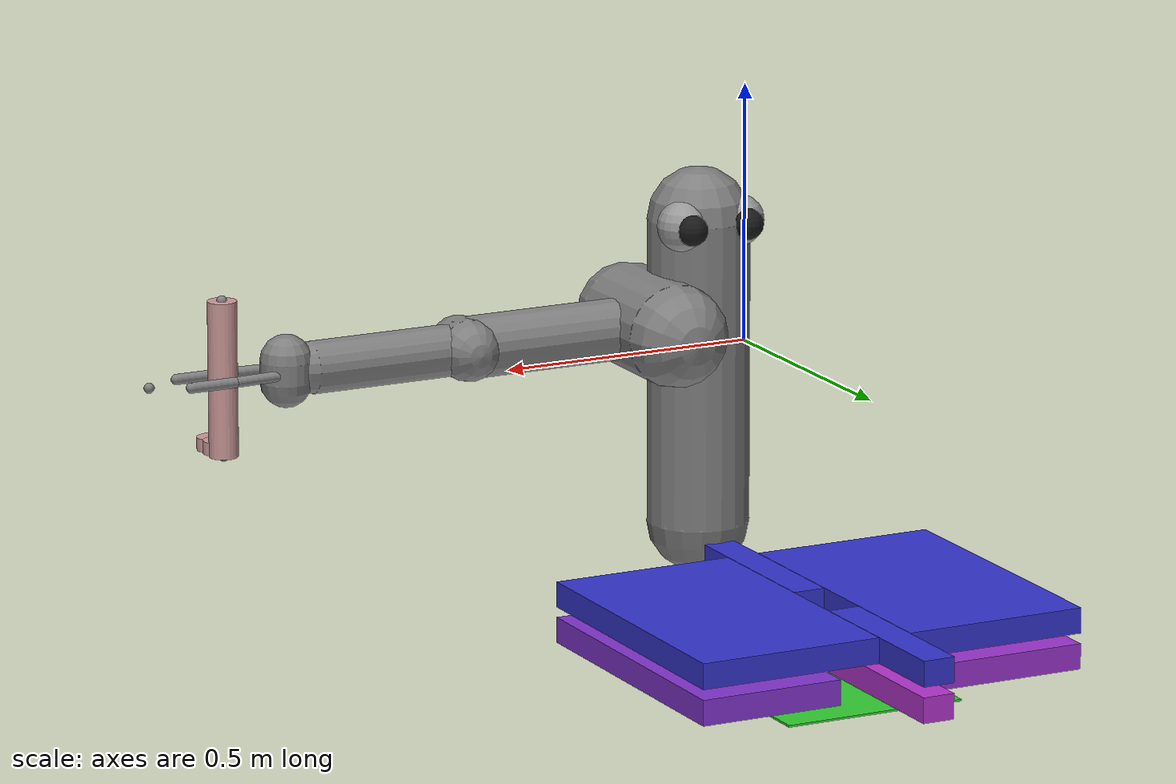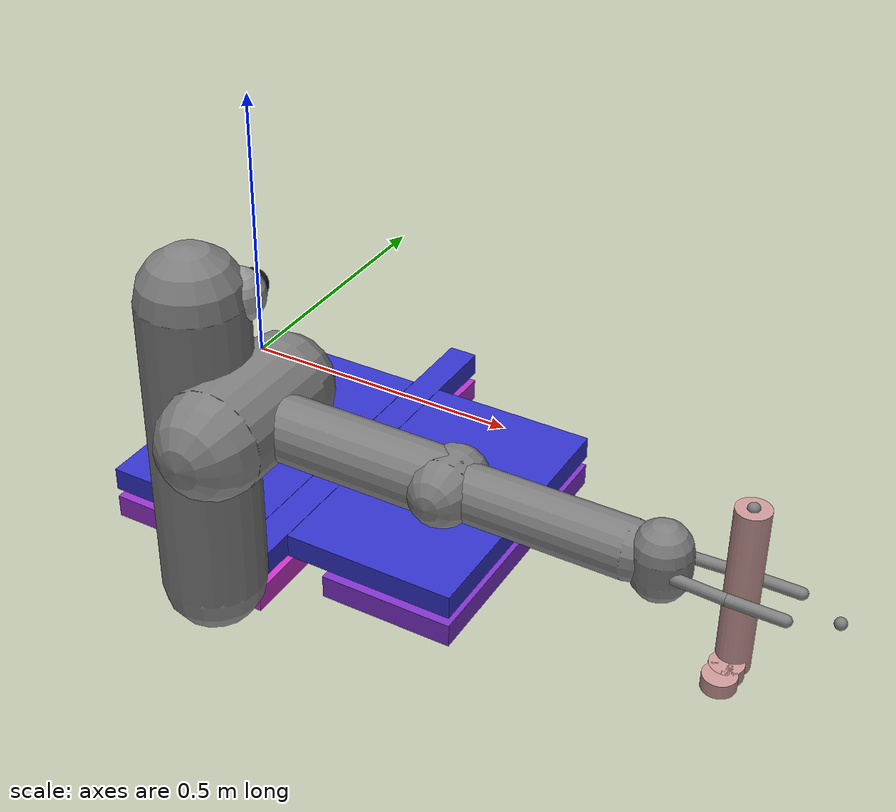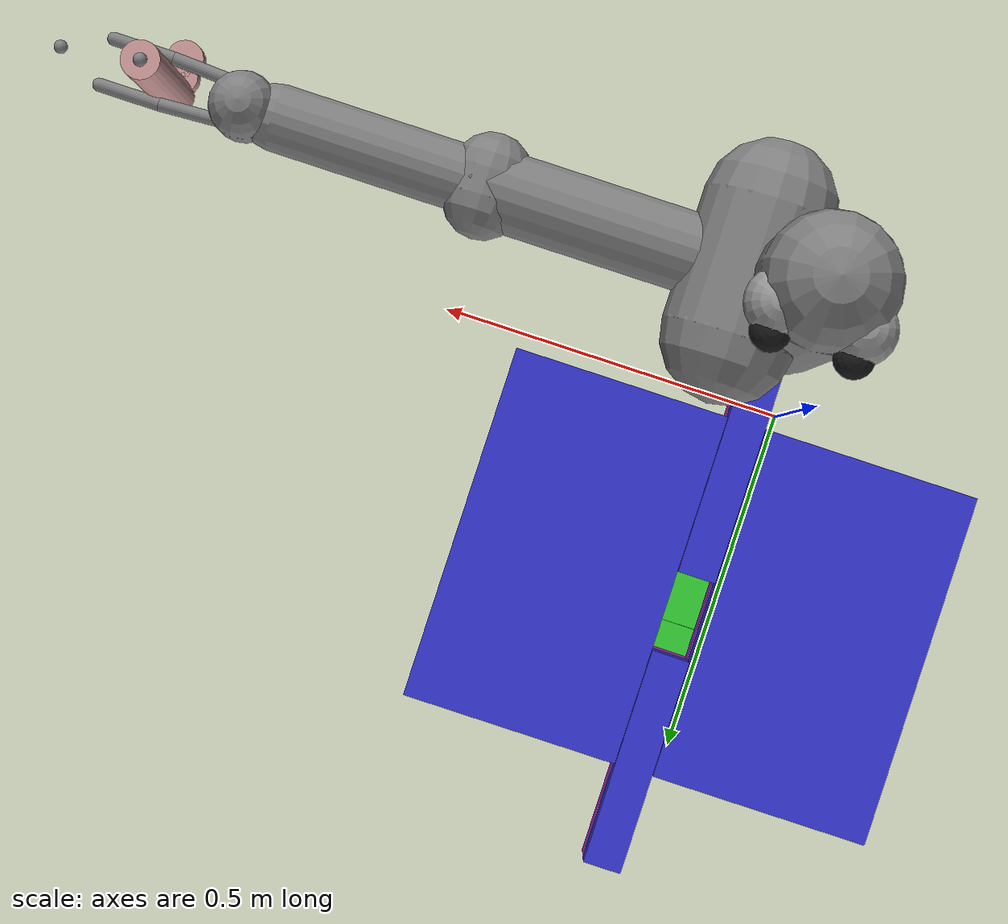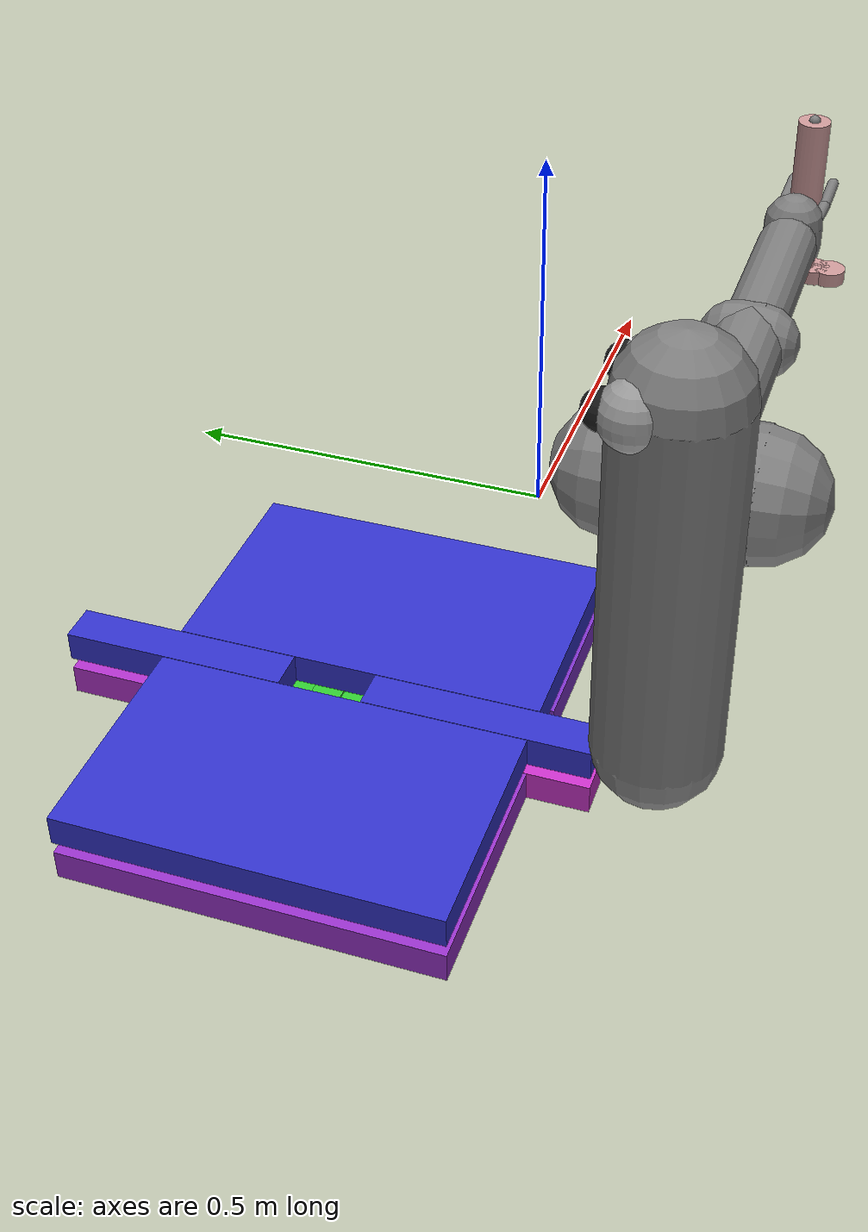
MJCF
<mujoco model="arm3d">

    <compiler inertiafromgeom="true" angle="radian" coordinate="local" />
    <option timestep="0.01" gravity="0 0 0" iterations="20" integrator="Euler" />
    <default>
        <joint armature="0.04" damping="1" limited="true" />
        <geom friction=".5 .1 .1" margin="0.002" condim="1" contype="0" conaffinity="0" />
    </default>

    <worldbody>
        <body name="r_shoulder_pan_link" pos="0 -0.188 0">
            <geom name="e1" type="sphere" rgba="0.6 0.6 0.6 1" pos="-0.06 0.05 0.2" size="0.05" />
            <geom name="e2" type="sphere" rgba="0.6 0.6 0.6 1" pos=" 0.06 0.05 0.2" size="0.05" />
            <geom name="e1p" type="sphere" rgba="0.1 0.1 0.1 1" pos="-0.06 0.09 0.2" size="0.03" />
            <geom name="e2p" type="sphere" rgba="0.1 0.1 0.1 1" pos=" 0.06 0.09 0.2" size="0.03" />
            <geom name="sp" type="capsule" fromto="0 0 -0.4 0 0 0.2" size="0.1" />
            <joint name="r_shoulder_pan_joint" type="hinge" pos="0 0 0" axis="0 0 1" range="-2.2854 1.714602" damping="10.0" />

            <body name="r_shoulder_lift_link" pos="0.1 0 0">
                <geom name="sl" type="capsule" fromto="0 -0.1 0 0 0.1 0" size="0.1" />
                <joint name="r_shoulder_lift_joint" type="hinge" pos="0 0 0" axis="0 1 0" range="-0.5236 1.3963" damping="10.0" />

                <body name="r_upper_arm_roll_link" pos="0 0 0">
                    <geom name="uar" type="capsule" fromto="-0.1 0 0 0.1 0 0" size="0.02" />
                    <joint name="r_upper_arm_roll_joint" type="hinge" pos="0 0 0" axis="1 0 0" range="-3.9 0.8" damping="0.1" />

                    <body name="r_upper_arm_link" pos="0 0 0">
                        <geom name="ua" type="capsule" fromto="0 0 0 0.4 0 0" size="0.06" />

                        <body name="r_elbow_flex_link" pos="0.4 0 0">
                            <geom name="ef" type="capsule" fromto="0 -0.02 0 0.0 0.02 0" size="0.06" />
                            <joint name="r_elbow_flex_joint" type="hinge" pos="0 0 0" axis="0 1 0" range="-2.3213 0" damping="1.0" />

                            <body name="r_forearm_roll_link" pos="0 0 0">
                                <geom name="fr" type="capsule" fromto="-0.1 0 0 0.1 0 0" size="0.02" />
                                <joint name="r_forearm_roll_joint" type="hinge" pos="0 0 0" axis="1 0 0" range="-30.15 30.15" damping=".1" />

                                <body name="r_forearm_link" pos="0 0 0">
                                    <geom name="fa" type="capsule" fromto="0 0 0 0.321 0 0" size="0.05" />

                                    <body name="r_wrist_flex_link" pos="0.321 0 0">
                                        <geom name="wf" type="capsule" fromto="0 -0.02 0 0 0.02 0" size="0.01" />
                                        <joint name="r_wrist_flex_joint" type="hinge" pos="0 0 0" axis="0 1 0" range="-2.094 0" damping=".1" />

                                        <body name="r_wrist_roll_link" pos="0 0 0">
                                            <geom name="wr" type="capsule" fromto="-0.02 0 0 0.02 0 0" size="0.01" />
                                            <joint name="r_wrist_roll_joint" type="hinge" pos="0 0 0" axis="1 0 0" range="-30.15 30.15" damping="0.1" />

                                            <body name="r_gripper_palm_link" pos="0 0 0">
                                                <geom name="pl" type="capsule" fromto="0.05 0 -0.02 0.05 0 0.02" size="0.05" />

                                                <body name="r_gripper_tool_frame" pos="0.18 0 0">
                                                    <site name="leg_bottom" pos="0 0 -0.15" size="0.01" />
                                                    <site name="leg_top" pos="0 0 0.15" size="0.01" />
                                                    <site name="leg_right" pos="0.15 0 0" size="0.01" />
                                                    <body name="key" pos="0 0 -0.0">
                                                        <geom name="key_geom" rgba="0.8 0.6 0.6 1" type="cylinder" fromto="0 0 -0.15 0 0 0.15" size="0.028" density="2000" contype="1" conaffinity="1" />
                                                    </body>
                                                    <body name="key_head1" pos="0 -0.028 -0.125">
                                                        <geom name="key_head_geom1" rgba="0.8 0.6 0.6 1" type="cylinder" fromto="0 0 0 0 0 -0.025" size="0.028" density="2000" contype="1" conaffinity="1" />
                                                    </body>
                                                    <body name="key_head2" pos="0 -0.056 -0.125">
                                                        <geom name="key_head_geom2" rgba="0.8 0.6 0.6 1" type="cylinder" fromto="0 0 0 0 0 -0.025" size="0.028" density="2000" contype="1" conaffinity="1" />
                                                    </body>
                                                </body>

                                                <body name="r_gripper_l_finger_link" pos="0.07691 0.03 0">
                                                    <geom name="gf3" type="capsule" fromto="0 0 0 0.09137 0.00495 0" size="0.01" />

                                                    <body name="r_gripper_l_finger_tip_link" pos="0.09137 0.00495 0">
                                                        <geom name="gf4" type="capsule" fromto="0 0 0 0.09137 0.0 0" size="0.01" />
                                                    </body>
                                                </body>

                                                <body name="r_gripper_r_finger_link" pos="0.07691 -0.03 0">
                                                    <geom name="gf1" type="capsule" fromto="0 0 0 0.09137 -0.00495 0" size="0.01" />

                                                    <body name="r_gripper_r_finger_tip_link" pos="0.09137 -0.00495 0">
                                                        <geom name="gf2" type="capsule" fromto="0 0 0 0.09137 0.0 0" size="0.01" />
                                                    </body>
                                                </body>
                                            </body>
                                        </body>
                                    </body>
                                </body>
                            </body>
                        </body>
                    </body>
                </body>
            </body>
        </body>

        <body name="w1" pos="0.216 0.3 -0.45">
            <geom name="w1" rgba="0.2 0.2 0.8 1" type="box" size="0.183 0.3 0.025" contype="1" conaffinity="1" />
        </body>

        <body name="w2" pos="-0.216 0.3 -0.45">
            <geom name="w2" rgba="0.2 0.2 0.8 1" type="box" size="0.183 0.3 0.025" contype="1" conaffinity="1" />
        </body>

        <body name="w3" pos="0.0 0.586 -0.45">
            <geom name="w3" rgba="0.2 0.2 0.8 1" type="box" size="0.032 0.183 0.025" contype="1" conaffinity="1" />
        </body>

        <body name="w4" pos="0.0 0.084 -0.45">
            <geom name="w4" rgba="0.2 0.2 0.8 1" type="box" size="0.032 0.183 0.025" contype="1" conaffinity="1" />
        </body>

        <body name="wa1" pos="0.256 0.3 -0.52">
            <geom name="wa1" rgba="0.5 0.2 0.8 1" type="box" size="0.143 0.3 0.025" contype="1" conaffinity="1" />
        </body>

        <body name="wa2" pos="-0.216 0.3 -0.52">
            <geom name="wa2" rgba="0.6 0.2 0.8 1" type="box" size="0.183 0.3 0.025" contype="1" conaffinity="1" />
        </body>

        <body name="wa3" pos="0.0 0.586 -0.52">
            <geom name="wa3" rgba="0.7 0.2 0.8 1" type="box" size="0.032 0.183 0.025" contype="1" conaffinity="1" />
        </body>

        <body name="wa4" pos="0.0 0.084 -0.52">
            <geom name="wa4" rgba="0.8 0.2 0.8 1" type="box" size="0.032 0.183 0.025" contype="1" conaffinity="1" />
        </body>

        <body name="wb1" pos="0.0 0.38 -0.548">
            <geom name="wb1" rgba="0.2 0.8 0.2 1" type="box" size="0.183 0.025 0.002" contype="1" conaffinity="1" />
        </body>

        <body name="wb2" pos="0.0 0.38 -0.595">
            <geom name="wb2" rgba="0.2 0.8 0.2 1" type="box" size="0.183 0.15 0.002" contype="1" conaffinity="1" />
        </body>

    </worldbody>

    <actuator>
        <motor joint="r_shoulder_pan_joint" ctrlrange="-1.0 1.0" ctrllimited="true" />
        <motor joint="r_shoulder_lift_joint" ctrlrange="-1.0 1.0" ctrllimited="true" />
        <motor joint="r_upper_arm_roll_joint" ctrlrange="-1.0 1.0" ctrllimited="true" />
        <motor joint="r_elbow_flex_joint" ctrlrange="-1.0 1.0" ctrllimited="true" />
        <motor joint="r_forearm_roll_joint" ctrlrange="-1.0 1.0" ctrllimited="true" />
        <motor joint="r_wrist_flex_joint" ctrlrange="-1.0 1.0" ctrllimited="true" />
        <motor joint="r_wrist_roll_joint" ctrlrange="-1.0 1.0" ctrllimited="true" />
    </actuator>

</mujoco>
